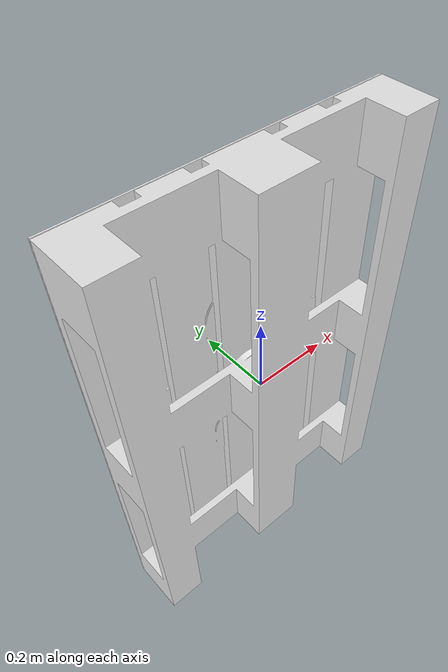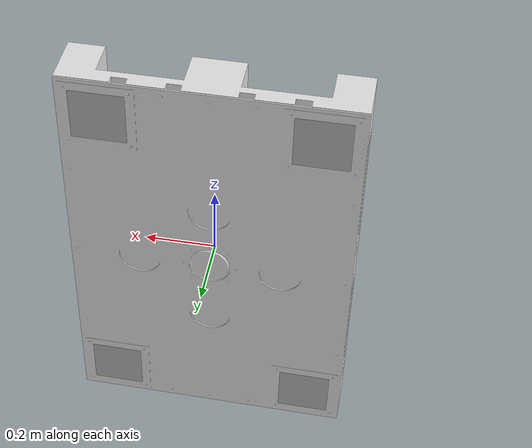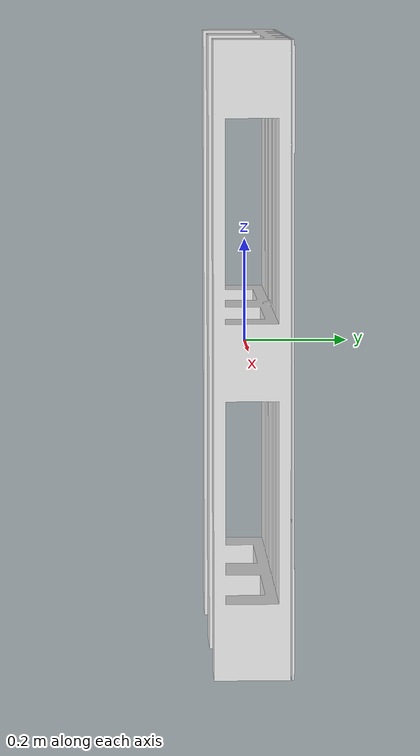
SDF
<?xml version="1.0"?>
<sdf version="1.6">
  <model name="tac_docking_station">
    <static>true</static>
    <pose>0 0 0 0 0 0</pose>

    <!-- Main docking station structure -->
    <link name="base_link">
      <pose>0 0 0 0 0 0</pose>

      <collision name="base_collision">
        <pose>0 0 0 0 0 0</pose>
        <geometry>
          <mesh>
            <uri>model://tac_docking_station/meshes/docking_station.stl</uri>
            <scale>0.001 0.001 0.001</scale> <!-- STEP is in mm, Gazebo in m -->
          </mesh>
        </geometry>
      </collision>

      <visual name="base_visual">
        <pose>0 0 0 0 0 0</pose>
        <geometry>
          <mesh>
            <uri>model://tac_docking_station/meshes/docking_station.stl</uri>
            <scale>0.001 0.001 0.001</scale>
          </mesh>
        </geometry>
        <material>
          <ambient>0.8 0.8 0.8 1</ambient>
          <diffuse>0.9 0.9 0.9 1</diffuse>
        </material>
      </visual>
    </link>

    <!-- ArUco Marker 28 (Top-left: x=0.29, z=0.49) -->
    <link name="aruco_28">
      <!-- Position from STEP: (290, 79, 490) mm = (0.29, 0.079, 0.49) m -->
      <!-- Offset slightly above surface (y+0.001) to prevent z-fighting -->
      <!-- Rotated to face -Y direction (looking down at the station from above) -->
      <pose>0.29 0.080 0.49 -1.5708 0 0</pose>
      <visual name="aruco_28_visual">
        <geometry>
          <box>
            <size>0.15 0.15 0.001</size> <!-- 10cm x 10cm marker -->
          </box>
        </geometry>
        <material>
          <script>
            <uri>model://tac_docking_station/materials/scripts</uri>
            <uri>model://tac_docking_station/materials/textures</uri>
            <name>ArUco/Tag28</name>
          </script>
        </material>
      </visual>
    </link>

    <!-- ArUco Marker 7 (Top-right: x=-0.29, z=0.49) -->
    <link name="aruco_7">
      <pose>-0.29 0.080 0.49 -1.5708 0 0</pose>
      <visual name="aruco_7_visual">
        <geometry>
          <box>
            <size>0.15 0.15 0.001</size>
          </box>
        </geometry>
        <material>
          <script>
            <uri>model://tac_docking_station/materials/scripts</uri>
            <uri>model://tac_docking_station/materials/textures</uri>
            <name>ArUco/Tag7</name>
          </script>
        </material>
      </visual>
    </link>

    <!-- ArUco Marker 19 (Bottom-left: x=0.29, z=-0.49) -->
    <link name="aruco_19">
      <pose>0.29 0.080 -0.49 -1.5708 0 0</pose>
      <visual name="aruco_19_visual">
        <geometry>
          <box>
            <size>0.15 0.15 0.001</size>
          </box>
        </geometry>
        <material>
          <script>
            <uri>model://tac_docking_station/materials/scripts</uri>
            <uri>model://tac_docking_station/materials/textures</uri>
            <name>ArUco/Tag19</name>
          </script>
        </material>
      </visual>
    </link>

    <!-- ArUco Marker 96 (Bottom-right: x=-0.29, z=-0.49) -->
    <link name="aruco_96">
      <pose>-0.29 0.080 -0.49 -1.5708 0 0</pose>
      <visual name="aruco_96_visual">
        <geometry>
          <box>
            <size>0.15 0.15 0.001</size>
          </box>
        </geometry>
        <material>
          <script>
            <uri>model://tac_docking_station/materials/scripts</uri>
            <uri>model://tac_docking_station/materials/textures</uri>
            <name>ArUco/Tag96</name>
          </script>
        </material>
      </visual>
    </link>

  </model>
</sdf>
